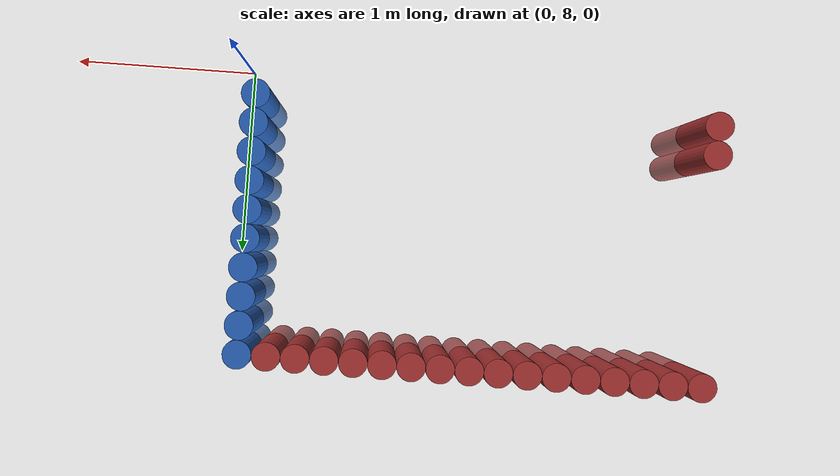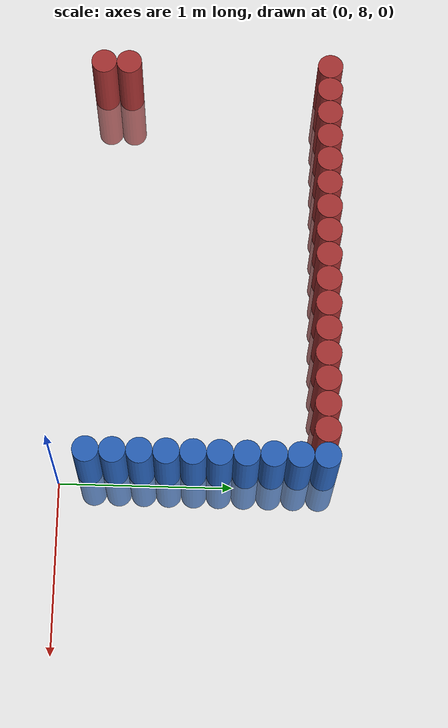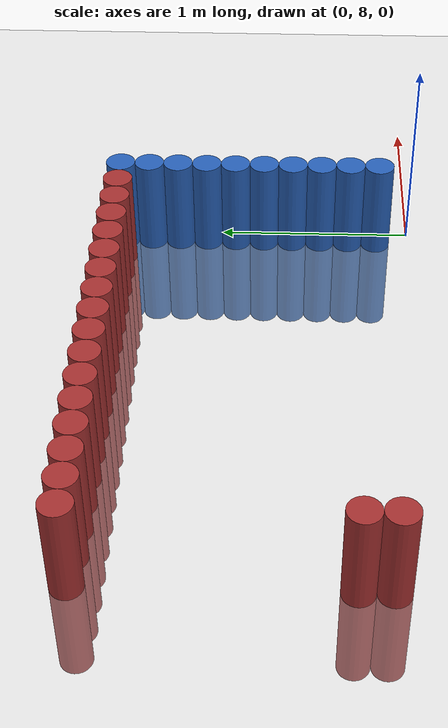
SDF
<sdf version="1.6">
 <world name="default">
  <model name="ground_plane">
   <static>1</static>
   <link name="link">
    <collision name="collision">
     <geometry><plane><normal>0 0 1</normal><size>100 100</size></plane></geometry>
     <surface><friction><ode><mu>100</mu><mu2>50</mu2></ode></friction></surface>
    </collision>
    <visual name="visual">
     <cast_shadows>0</cast_shadows>
     <geometry><plane><normal>0 0 1</normal><size>100 100</size></plane></geometry>
     <material>
      <script><uri>file://media/materials/scripts/gazebo.material</uri><name>Gazebo/Grey</name></script>
     </material>
    </visual>
   </link>
  </model>
  <model name="unit_cylinder_356">
   <static>1</static>
   <pose>-2.475000 8.175000 0.000000 0.000000 0.000000 0.000000</pose>
   <link name="link">
    <inertial>
     <mass>1</mass>
     <inertia><ixx>0.145833</ixx><ixy>0</ixy><ixz>0</ixz><iyy>0.145833</iyy><iyz>0</iyz><izz>0.125</izz></inertia>
    </inertial>
    <collision name="collision">
     <geometry><cylinder><radius>0.075000</radius><length>1</length></cylinder></geometry>
    </collision>
    <visual name="visual">
     <geometry><cylinder><radius>0.075000</radius><length>1</length></cylinder></geometry>
     <material>
      <ambient>0.648000 0.192000 0.192000 1</ambient>
      <diffuse>0.648000 0.192000 0.192000 1</diffuse>
     </material>
     <material>
      <script><name>Gazebo/Grey</name><uri>file://media/materials/scripts/gazebo.material</uri></script>
     </material>
    </visual>
   </link>
  </model>
  <model name="unit_cylinder_357">
   <static>1</static>
   <pose>-2.475000 8.325000 0.000000 0.000000 0.000000 0.000000</pose>
   <link name="link">
    <inertial>
     <mass>1</mass>
     <inertia><ixx>0.145833</ixx><ixy>0</ixy><ixz>0</ixz><iyy>0.145833</iyy><iyz>0</iyz><izz>0.125</izz></inertia>
    </inertial>
    <collision name="collision">
     <geometry><cylinder><radius>0.075000</radius><length>1</length></cylinder></geometry>
    </collision>
    <visual name="visual">
     <geometry><cylinder><radius>0.075000</radius><length>1</length></cylinder></geometry>
     <material>
      <ambient>0.648000 0.192000 0.192000 1</ambient>
      <diffuse>0.648000 0.192000 0.192000 1</diffuse>
     </material>
     <material>
      <script><name>Gazebo/Grey</name><uri>file://media/materials/scripts/gazebo.material</uri></script>
     </material>
    </visual>
   </link>
  </model>
  <model name="unit_cylinder_358">
   <static>1</static>
   <pose>-2.475000 9.525000 0.000000 0.000000 0.000000 0.000000</pose>
   <link name="link">
    <inertial>
     <mass>1</mass>
     <inertia><ixx>0.145833</ixx><ixy>0</ixy><ixz>0</ixz><iyy>0.145833</iyy><iyz>0</iyz><izz>0.125</izz></inertia>
    </inertial>
    <collision name="collision">
     <geometry><cylinder><radius>0.075000</radius><length>1</length></cylinder></geometry>
    </collision>
    <visual name="visual">
     <geometry><cylinder><radius>0.075000</radius><length>1</length></cylinder></geometry>
     <material>
      <ambient>0.648000 0.192000 0.192000 1</ambient>
      <diffuse>0.648000 0.192000 0.192000 1</diffuse>
     </material>
     <material>
      <script><name>Gazebo/Grey</name><uri>file://media/materials/scripts/gazebo.material</uri></script>
     </material>
    </visual>
   </link>
  </model>
  <model name="unit_cylinder_360">
   <static>1</static>
   <pose>-2.325000 9.525000 0.000000 0.000000 0.000000 0.000000</pose>
   <link name="link">
    <inertial>
     <mass>1</mass>
     <inertia><ixx>0.145833</ixx><ixy>0</ixy><ixz>0</ixz><iyy>0.145833</iyy><iyz>0</iyz><izz>0.125</izz></inertia>
    </inertial>
    <collision name="collision">
     <geometry><cylinder><radius>0.075000</radius><length>1</length></cylinder></geometry>
    </collision>
    <visual name="visual">
     <geometry><cylinder><radius>0.075000</radius><length>1</length></cylinder></geometry>
     <material>
      <ambient>0.648000 0.192000 0.192000 1</ambient>
      <diffuse>0.648000 0.192000 0.192000 1</diffuse>
     </material>
     <material>
      <script><name>Gazebo/Grey</name><uri>file://media/materials/scripts/gazebo.material</uri></script>
     </material>
    </visual>
   </link>
  </model>
  <model name="unit_cylinder_364">
   <static>1</static>
   <pose>-2.175000 9.525000 0.000000 0.000000 0.000000 0.000000</pose>
   <link name="link">
    <inertial>
     <mass>1</mass>
     <inertia><ixx>0.145833</ixx><ixy>0</ixy><ixz>0</ixz><iyy>0.145833</iyy><iyz>0</iyz><izz>0.125</izz></inertia>
    </inertial>
    <collision name="collision">
     <geometry><cylinder><radius>0.075000</radius><length>1</length></cylinder></geometry>
    </collision>
    <visual name="visual">
     <geometry><cylinder><radius>0.075000</radius><length>1</length></cylinder></geometry>
     <material>
      <ambient>0.648000 0.192000 0.192000 1</ambient>
      <diffuse>0.648000 0.192000 0.192000 1</diffuse>
     </material>
     <material>
      <script><name>Gazebo/Grey</name><uri>file://media/materials/scripts/gazebo.material</uri></script>
     </material>
    </visual>
   </link>
  </model>
  <model name="unit_cylinder_382">
   <static>1</static>
   <pose>-2.025000 9.525000 0.000000 0.000000 0.000000 0.000000</pose>
   <link name="link">
    <inertial>
     <mass>1</mass>
     <inertia><ixx>0.145833</ixx><ixy>0</ixy><ixz>0</ixz><iyy>0.145833</iyy><iyz>0</iyz><izz>0.125</izz></inertia>
    </inertial>
    <collision name="collision">
     <geometry><cylinder><radius>0.075000</radius><length>1</length></cylinder></geometry>
    </collision>
    <visual name="visual">
     <geometry><cylinder><radius>0.075000</radius><length>1</length></cylinder></geometry>
     <material>
      <ambient>0.648000 0.192000 0.192000 1</ambient>
      <diffuse>0.648000 0.192000 0.192000 1</diffuse>
     </material>
     <material>
      <script><name>Gazebo/Grey</name><uri>file://media/materials/scripts/gazebo.material</uri></script>
     </material>
    </visual>
   </link>
  </model>
  <model name="unit_cylinder_384">
   <static>1</static>
   <pose>-1.875000 9.525000 0.000000 0.000000 0.000000 0.000000</pose>
   <link name="link">
    <inertial>
     <mass>1</mass>
     <inertia><ixx>0.145833</ixx><ixy>0</ixy><ixz>0</ixz><iyy>0.145833</iyy><iyz>0</iyz><izz>0.125</izz></inertia>
    </inertial>
    <collision name="collision">
     <geometry><cylinder><radius>0.075000</radius><length>1</length></cylinder></geometry>
    </collision>
    <visual name="visual">
     <geometry><cylinder><radius>0.075000</radius><length>1</length></cylinder></geometry>
     <material>
      <ambient>0.648000 0.192000 0.192000 1</ambient>
      <diffuse>0.648000 0.192000 0.192000 1</diffuse>
     </material>
     <material>
      <script><name>Gazebo/Grey</name><uri>file://media/materials/scripts/gazebo.material</uri></script>
     </material>
    </visual>
   </link>
  </model>
  <model name="unit_cylinder_386">
   <static>1</static>
   <pose>-1.725000 9.525000 0.000000 0.000000 0.000000 0.000000</pose>
   <link name="link">
    <inertial>
     <mass>1</mass>
     <inertia><ixx>0.145833</ixx><ixy>0</ixy><ixz>0</ixz><iyy>0.145833</iyy><iyz>0</iyz><izz>0.125</izz></inertia>
    </inertial>
    <collision name="collision">
     <geometry><cylinder><radius>0.075000</radius><length>1</length></cylinder></geometry>
    </collision>
    <visual name="visual">
     <geometry><cylinder><radius>0.075000</radius><length>1</length></cylinder></geometry>
     <material>
      <ambient>0.648000 0.192000 0.192000 1</ambient>
      <diffuse>0.648000 0.192000 0.192000 1</diffuse>
     </material>
     <material>
      <script><name>Gazebo/Grey</name><uri>file://media/materials/scripts/gazebo.material</uri></script>
     </material>
    </visual>
   </link>
  </model>
  <model name="unit_cylinder_388">
   <static>1</static>
   <pose>-1.575000 9.525000 0.000000 0.000000 0.000000 0.000000</pose>
   <link name="link">
    <inertial>
     <mass>1</mass>
     <inertia><ixx>0.145833</ixx><ixy>0</ixy><ixz>0</ixz><iyy>0.145833</iyy><iyz>0</iyz><izz>0.125</izz></inertia>
    </inertial>
    <collision name="collision">
     <geometry><cylinder><radius>0.075000</radius><length>1</length></cylinder></geometry>
    </collision>
    <visual name="visual">
     <geometry><cylinder><radius>0.075000</radius><length>1</length></cylinder></geometry>
     <material>
      <ambient>0.648000 0.192000 0.192000 1</ambient>
      <diffuse>0.648000 0.192000 0.192000 1</diffuse>
     </material>
     <material>
      <script><name>Gazebo/Grey</name><uri>file://media/materials/scripts/gazebo.material</uri></script>
     </material>
    </visual>
   </link>
  </model>
  <model name="unit_cylinder_390">
   <static>1</static>
   <pose>-1.425000 9.525000 0.000000 0.000000 0.000000 0.000000</pose>
   <link name="link">
    <inertial>
     <mass>1</mass>
     <inertia><ixx>0.145833</ixx><ixy>0</ixy><ixz>0</ixz><iyy>0.145833</iyy><iyz>0</iyz><izz>0.125</izz></inertia>
    </inertial>
    <collision name="collision">
     <geometry><cylinder><radius>0.075000</radius><length>1</length></cylinder></geometry>
    </collision>
    <visual name="visual">
     <geometry><cylinder><radius>0.075000</radius><length>1</length></cylinder></geometry>
     <material>
      <ambient>0.648000 0.192000 0.192000 1</ambient>
      <diffuse>0.648000 0.192000 0.192000 1</diffuse>
     </material>
     <material>
      <script><name>Gazebo/Grey</name><uri>file://media/materials/scripts/gazebo.material</uri></script>
     </material>
    </visual>
   </link>
  </model>
  <model name="unit_cylinder_392">
   <static>1</static>
   <pose>-1.275000 9.525000 0.000000 0.000000 0.000000 0.000000</pose>
   <link name="link">
    <inertial>
     <mass>1</mass>
     <inertia><ixx>0.145833</ixx><ixy>0</ixy><ixz>0</ixz><iyy>0.145833</iyy><iyz>0</iyz><izz>0.125</izz></inertia>
    </inertial>
    <collision name="collision">
     <geometry><cylinder><radius>0.075000</radius><length>1</length></cylinder></geometry>
    </collision>
    <visual name="visual">
     <geometry><cylinder><radius>0.075000</radius><length>1</length></cylinder></geometry>
     <material>
      <ambient>0.648000 0.192000 0.192000 1</ambient>
      <diffuse>0.648000 0.192000 0.192000 1</diffuse>
     </material>
     <material>
      <script><name>Gazebo/Grey</name><uri>file://media/materials/scripts/gazebo.material</uri></script>
     </material>
    </visual>
   </link>
  </model>
  <model name="unit_cylinder_394">
   <static>1</static>
   <pose>-1.125000 9.525000 0.000000 0.000000 0.000000 0.000000</pose>
   <link name="link">
    <inertial>
     <mass>1</mass>
     <inertia><ixx>0.145833</ixx><ixy>0</ixy><ixz>0</ixz><iyy>0.145833</iyy><iyz>0</iyz><izz>0.125</izz></inertia>
    </inertial>
    <collision name="collision">
     <geometry><cylinder><radius>0.075000</radius><length>1</length></cylinder></geometry>
    </collision>
    <visual name="visual">
     <geometry><cylinder><radius>0.075000</radius><length>1</length></cylinder></geometry>
     <material>
      <ambient>0.648000 0.192000 0.192000 1</ambient>
      <diffuse>0.648000 0.192000 0.192000 1</diffuse>
     </material>
     <material>
      <script><name>Gazebo/Grey</name><uri>file://media/materials/scripts/gazebo.material</uri></script>
     </material>
    </visual>
   </link>
  </model>
  <model name="unit_cylinder_396">
   <static>1</static>
   <pose>-0.975000 9.525000 0.000000 0.000000 0.000000 0.000000</pose>
   <link name="link">
    <inertial>
     <mass>1</mass>
     <inertia><ixx>0.145833</ixx><ixy>0</ixy><ixz>0</ixz><iyy>0.145833</iyy><iyz>0</iyz><izz>0.125</izz></inertia>
    </inertial>
    <collision name="collision">
     <geometry><cylinder><radius>0.075000</radius><length>1</length></cylinder></geometry>
    </collision>
    <visual name="visual">
     <geometry><cylinder><radius>0.075000</radius><length>1</length></cylinder></geometry>
     <material>
      <ambient>0.648000 0.192000 0.192000 1</ambient>
      <diffuse>0.648000 0.192000 0.192000 1</diffuse>
     </material>
     <material>
      <script><name>Gazebo/Grey</name><uri>file://media/materials/scripts/gazebo.material</uri></script>
     </material>
    </visual>
   </link>
  </model>
  <model name="unit_cylinder_398">
   <static>1</static>
   <pose>-0.825000 9.525000 0.000000 0.000000 0.000000 0.000000</pose>
   <link name="link">
    <inertial>
     <mass>1</mass>
     <inertia><ixx>0.145833</ixx><ixy>0</ixy><ixz>0</ixz><iyy>0.145833</iyy><iyz>0</iyz><izz>0.125</izz></inertia>
    </inertial>
    <collision name="collision">
     <geometry><cylinder><radius>0.075000</radius><length>1</length></cylinder></geometry>
    </collision>
    <visual name="visual">
     <geometry><cylinder><radius>0.075000</radius><length>1</length></cylinder></geometry>
     <material>
      <ambient>0.648000 0.192000 0.192000 1</ambient>
      <diffuse>0.648000 0.192000 0.192000 1</diffuse>
     </material>
     <material>
      <script><name>Gazebo/Grey</name><uri>file://media/materials/scripts/gazebo.material</uri></script>
     </material>
    </visual>
   </link>
  </model>
  <model name="unit_cylinder_400">
   <static>1</static>
   <pose>-0.675000 9.525000 0.000000 0.000000 0.000000 0.000000</pose>
   <link name="link">
    <inertial>
     <mass>1</mass>
     <inertia><ixx>0.145833</ixx><ixy>0</ixy><ixz>0</ixz><iyy>0.145833</iyy><iyz>0</iyz><izz>0.125</izz></inertia>
    </inertial>
    <collision name="collision">
     <geometry><cylinder><radius>0.075000</radius><length>1</length></cylinder></geometry>
    </collision>
    <visual name="visual">
     <geometry><cylinder><radius>0.075000</radius><length>1</length></cylinder></geometry>
     <material>
      <ambient>0.648000 0.192000 0.192000 1</ambient>
      <diffuse>0.648000 0.192000 0.192000 1</diffuse>
     </material>
     <material>
      <script><name>Gazebo/Grey</name><uri>file://media/materials/scripts/gazebo.material</uri></script>
     </material>
    </visual>
   </link>
  </model>
  <model name="unit_cylinder_402">
   <static>1</static>
   <pose>-0.525000 9.525000 0.000000 0.000000 0.000000 0.000000</pose>
   <link name="link">
    <inertial>
     <mass>1</mass>
     <inertia><ixx>0.145833</ixx><ixy>0</ixy><ixz>0</ixz><iyy>0.145833</iyy><iyz>0</iyz><izz>0.125</izz></inertia>
    </inertial>
    <collision name="collision">
     <geometry><cylinder><radius>0.075000</radius><length>1</length></cylinder></geometry>
    </collision>
    <visual name="visual">
     <geometry><cylinder><radius>0.075000</radius><length>1</length></cylinder></geometry>
     <material>
      <ambient>0.648000 0.192000 0.192000 1</ambient>
      <diffuse>0.648000 0.192000 0.192000 1</diffuse>
     </material>
     <material>
      <script><name>Gazebo/Grey</name><uri>file://media/materials/scripts/gazebo.material</uri></script>
     </material>
    </visual>
   </link>
  </model>
  <model name="unit_cylinder_404">
   <static>1</static>
   <pose>-0.375000 9.525000 0.000000 0.000000 0.000000 0.000000</pose>
   <link name="link">
    <inertial>
     <mass>1</mass>
     <inertia><ixx>0.145833</ixx><ixy>0</ixy><ixz>0</ixz><iyy>0.145833</iyy><iyz>0</iyz><izz>0.125</izz></inertia>
    </inertial>
    <collision name="collision">
     <geometry><cylinder><radius>0.075000</radius><length>1</length></cylinder></geometry>
    </collision>
    <visual name="visual">
     <geometry><cylinder><radius>0.075000</radius><length>1</length></cylinder></geometry>
     <material>
      <ambient>0.648000 0.192000 0.192000 1</ambient>
      <diffuse>0.648000 0.192000 0.192000 1</diffuse>
     </material>
     <material>
      <script><name>Gazebo/Grey</name><uri>file://media/materials/scripts/gazebo.material</uri></script>
     </material>
    </visual>
   </link>
  </model>
  <model name="unit_cylinder_406">
   <static>1</static>
   <pose>-0.225000 9.525000 0.000000 0.000000 0.000000 0.000000</pose>
   <link name="link">
    <inertial>
     <mass>1</mass>
     <inertia><ixx>0.145833</ixx><ixy>0</ixy><ixz>0</ixz><iyy>0.145833</iyy><iyz>0</iyz><izz>0.125</izz></inertia>
    </inertial>
    <collision name="collision">
     <geometry><cylinder><radius>0.075000</radius><length>1</length></cylinder></geometry>
    </collision>
    <visual name="visual">
     <geometry><cylinder><radius>0.075000</radius><length>1</length></cylinder></geometry>
     <material>
      <ambient>0.648000 0.192000 0.192000 1</ambient>
      <diffuse>0.648000 0.192000 0.192000 1</diffuse>
     </material>
     <material>
      <script><name>Gazebo/Grey</name><uri>file://media/materials/scripts/gazebo.material</uri></script>
     </material>
    </visual>
   </link>
  </model>
  <model name="unit_cylinder_427">
   <static>1</static>
   <pose>-0.075000 8.175000 0.000000 0.000000 0.000000 0.000000</pose>
   <link name="link">
    <inertial>
     <mass>1</mass>
     <inertia><ixx>0.145833</ixx><ixy>0</ixy><ixz>0</ixz><iyy>0.145833</iyy><iyz>0</iyz><izz>0.125</izz></inertia>
    </inertial>
    <collision name="collision">
     <geometry><cylinder><radius>0.075000</radius><length>1</length></cylinder></geometry>
    </collision>
    <visual name="visual">
     <geometry><cylinder><radius>0.075000</radius><length>1</length></cylinder></geometry>
     <material>
      <ambient>0.152000 0.379000 0.720000 1</ambient>
      <diffuse>0.152000 0.379000 0.720000 1</diffuse>
     </material>
     <material>
      <script><name>Gazebo/Grey</name><uri>file://media/materials/scripts/gazebo.material</uri></script>
     </material>
    </visual>
   </link>
  </model>
  <model name="unit_cylinder_428">
   <static>1</static>
   <pose>-0.075000 8.325000 0.000000 0.000000 0.000000 0.000000</pose>
   <link name="link">
    <inertial>
     <mass>1</mass>
     <inertia><ixx>0.145833</ixx><ixy>0</ixy><ixz>0</ixz><iyy>0.145833</iyy><iyz>0</iyz><izz>0.125</izz></inertia>
    </inertial>
    <collision name="collision">
     <geometry><cylinder><radius>0.075000</radius><length>1</length></cylinder></geometry>
    </collision>
    <visual name="visual">
     <geometry><cylinder><radius>0.075000</radius><length>1</length></cylinder></geometry>
     <material>
      <ambient>0.152000 0.379000 0.720000 1</ambient>
      <diffuse>0.152000 0.379000 0.720000 1</diffuse>
     </material>
     <material>
      <script><name>Gazebo/Grey</name><uri>file://media/materials/scripts/gazebo.material</uri></script>
     </material>
    </visual>
   </link>
  </model>
  <model name="unit_cylinder_429">
   <static>1</static>
   <pose>-0.075000 8.475000 0.000000 0.000000 0.000000 0.000000</pose>
   <link name="link">
    <inertial>
     <mass>1</mass>
     <inertia><ixx>0.145833</ixx><ixy>0</ixy><ixz>0</ixz><iyy>0.145833</iyy><iyz>0</iyz><izz>0.125</izz></inertia>
    </inertial>
    <collision name="collision">
     <geometry><cylinder><radius>0.075000</radius><length>1</length></cylinder></geometry>
    </collision>
    <visual name="visual">
     <geometry><cylinder><radius>0.075000</radius><length>1</length></cylinder></geometry>
     <material>
      <ambient>0.152000 0.379000 0.720000 1</ambient>
      <diffuse>0.152000 0.379000 0.720000 1</diffuse>
     </material>
     <material>
      <script><name>Gazebo/Grey</name><uri>file://media/materials/scripts/gazebo.material</uri></script>
     </material>
    </visual>
   </link>
  </model>
  <model name="unit_cylinder_430">
   <static>1</static>
   <pose>-0.075000 8.625000 0.000000 0.000000 0.000000 0.000000</pose>
   <link name="link">
    <inertial>
     <mass>1</mass>
     <inertia><ixx>0.145833</ixx><ixy>0</ixy><ixz>0</ixz><iyy>0.145833</iyy><iyz>0</iyz><izz>0.125</izz></inertia>
    </inertial>
    <collision name="collision">
     <geometry><cylinder><radius>0.075000</radius><length>1</length></cylinder></geometry>
    </collision>
    <visual name="visual">
     <geometry><cylinder><radius>0.075000</radius><length>1</length></cylinder></geometry>
     <material>
      <ambient>0.152000 0.379000 0.720000 1</ambient>
      <diffuse>0.152000 0.379000 0.720000 1</diffuse>
     </material>
     <material>
      <script><name>Gazebo/Grey</name><uri>file://media/materials/scripts/gazebo.material</uri></script>
     </material>
    </visual>
   </link>
  </model>
  <model name="unit_cylinder_431">
   <static>1</static>
   <pose>-0.075000 8.775000 0.000000 0.000000 0.000000 0.000000</pose>
   <link name="link">
    <inertial>
     <mass>1</mass>
     <inertia><ixx>0.145833</ixx><ixy>0</ixy><ixz>0</ixz><iyy>0.145833</iyy><iyz>0</iyz><izz>0.125</izz></inertia>
    </inertial>
    <collision name="collision">
     <geometry><cylinder><radius>0.075000</radius><length>1</length></cylinder></geometry>
    </collision>
    <visual name="visual">
     <geometry><cylinder><radius>0.075000</radius><length>1</length></cylinder></geometry>
     <material>
      <ambient>0.152000 0.379000 0.720000 1</ambient>
      <diffuse>0.152000 0.379000 0.720000 1</diffuse>
     </material>
     <material>
      <script><name>Gazebo/Grey</name><uri>file://media/materials/scripts/gazebo.material</uri></script>
     </material>
    </visual>
   </link>
  </model>
  <model name="unit_cylinder_432">
   <static>1</static>
   <pose>-0.075000 8.925000 0.000000 0.000000 0.000000 0.000000</pose>
   <link name="link">
    <inertial>
     <mass>1</mass>
     <inertia><ixx>0.145833</ixx><ixy>0</ixy><ixz>0</ixz><iyy>0.145833</iyy><iyz>0</iyz><izz>0.125</izz></inertia>
    </inertial>
    <collision name="collision">
     <geometry><cylinder><radius>0.075000</radius><length>1</length></cylinder></geometry>
    </collision>
    <visual name="visual">
     <geometry><cylinder><radius>0.075000</radius><length>1</length></cylinder></geometry>
     <material>
      <ambient>0.152000 0.379000 0.720000 1</ambient>
      <diffuse>0.152000 0.379000 0.720000 1</diffuse>
     </material>
     <material>
      <script><name>Gazebo/Grey</name><uri>file://media/materials/scripts/gazebo.material</uri></script>
     </material>
    </visual>
   </link>
  </model>
  <model name="unit_cylinder_433">
   <static>1</static>
   <pose>-0.075000 9.075000 0.000000 0.000000 0.000000 0.000000</pose>
   <link name="link">
    <inertial>
     <mass>1</mass>
     <inertia><ixx>0.145833</ixx><ixy>0</ixy><ixz>0</ixz><iyy>0.145833</iyy><iyz>0</iyz><izz>0.125</izz></inertia>
    </inertial>
    <collision name="collision">
     <geometry><cylinder><radius>0.075000</radius><length>1</length></cylinder></geometry>
    </collision>
    <visual name="visual">
     <geometry><cylinder><radius>0.075000</radius><length>1</length></cylinder></geometry>
     <material>
      <ambient>0.152000 0.379000 0.720000 1</ambient>
      <diffuse>0.152000 0.379000 0.720000 1</diffuse>
     </material>
     <material>
      <script><name>Gazebo/Grey</name><uri>file://media/materials/scripts/gazebo.material</uri></script>
     </material>
    </visual>
   </link>
  </model>
  <model name="unit_cylinder_434">
   <static>1</static>
   <pose>-0.075000 9.225000 0.000000 0.000000 0.000000 0.000000</pose>
   <link name="link">
    <inertial>
     <mass>1</mass>
     <inertia><ixx>0.145833</ixx><ixy>0</ixy><ixz>0</ixz><iyy>0.145833</iyy><iyz>0</iyz><izz>0.125</izz></inertia>
    </inertial>
    <collision name="collision">
     <geometry><cylinder><radius>0.075000</radius><length>1</length></cylinder></geometry>
    </collision>
    <visual name="visual">
     <geometry><cylinder><radius>0.075000</radius><length>1</length></cylinder></geometry>
     <material>
      <ambient>0.152000 0.379000 0.720000 1</ambient>
      <diffuse>0.152000 0.379000 0.720000 1</diffuse>
     </material>
     <material>
      <script><name>Gazebo/Grey</name><uri>file://media/materials/scripts/gazebo.material</uri></script>
     </material>
    </visual>
   </link>
  </model>
  <model name="unit_cylinder_435">
   <static>1</static>
   <pose>-0.075000 9.375000 0.000000 0.000000 0.000000 0.000000</pose>
   <link name="link">
    <inertial>
     <mass>1</mass>
     <inertia><ixx>0.145833</ixx><ixy>0</ixy><ixz>0</ixz><iyy>0.145833</iyy><iyz>0</iyz><izz>0.125</izz></inertia>
    </inertial>
    <collision name="collision">
     <geometry><cylinder><radius>0.075000</radius><length>1</length></cylinder></geometry>
    </collision>
    <visual name="visual">
     <geometry><cylinder><radius>0.075000</radius><length>1</length></cylinder></geometry>
     <material>
      <ambient>0.152000 0.379000 0.720000 1</ambient>
      <diffuse>0.152000 0.379000 0.720000 1</diffuse>
     </material>
     <material>
      <script><name>Gazebo/Grey</name><uri>file://media/materials/scripts/gazebo.material</uri></script>
     </material>
    </visual>
   </link>
  </model>
  <model name="unit_cylinder_436">
   <static>1</static>
   <pose>-0.075000 9.525000 0.000000 0.000000 0.000000 0.000000</pose>
   <link name="link">
    <inertial>
     <mass>1</mass>
     <inertia><ixx>0.145833</ixx><ixy>0</ixy><ixz>0</ixz><iyy>0.145833</iyy><iyz>0</iyz><izz>0.125</izz></inertia>
    </inertial>
    <collision name="collision">
     <geometry><cylinder><radius>0.075000</radius><length>1</length></cylinder></geometry>
    </collision>
    <visual name="visual">
     <geometry><cylinder><radius>0.075000</radius><length>1</length></cylinder></geometry>
     <material>
      <ambient>0.152000 0.379000 0.720000 1</ambient>
      <diffuse>0.152000 0.379000 0.720000 1</diffuse>
     </material>
     <material>
      <script><name>Gazebo/Grey</name><uri>file://media/materials/scripts/gazebo.material</uri></script>
     </material>
    </visual>
   </link>
  </model>
 </world>
</sdf>
